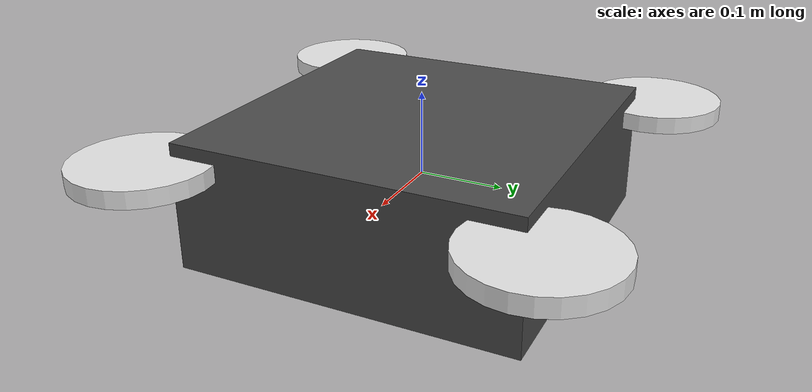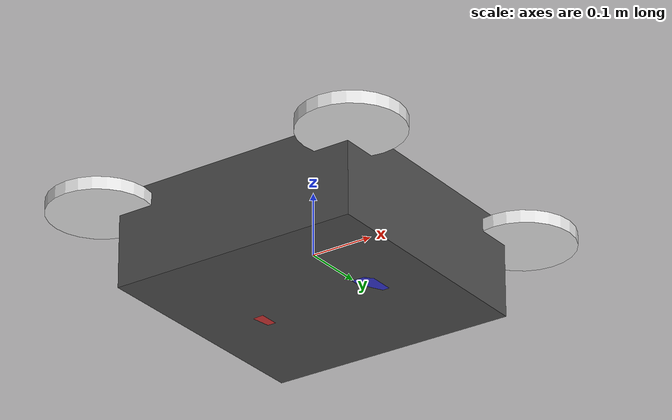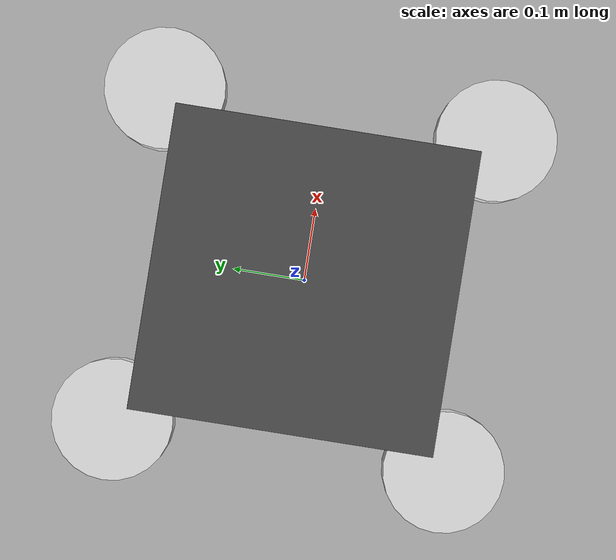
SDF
<?xml version="1.0"?>
<sdf version="1.7">
<model name="firefighting_drone">
    <static>false</static>

    <link name="base_link">
        <pose>0 0 0 0 0 0</pose>
        <collision name="collision">
            <geometry>
                <box>
                    <size>0.4 0.4 0.15</size>
                </box>
            </geometry>
        </collision>

        <visual name="visual">
            <geometry>
                <box>
                    <size>0.4 0.4 0.15</size>
                </box>
            </geometry>
            <material>
                <ambient>0.2 0.2 0.2 1</ambient>
                <diffuse>0.3 0.3 0.3 1</diffuse>
                <specular>0.1 0.1 0.1 1</specular>
            </material>
        </visual>

        <inertial>
            <mass>1.5</mass>
            <pose>0 0 0 0 0 0</pose>
            <inertia>
                <ixx>0.025</ixx>
                <ixy>0</ixy>
                <ixz>0</ixz>
                <iyy>0.025</iyy>
                <iyz>0</iyz>
                <izz>0.04</izz>
            </inertia>
        </inertial>
    </link>

    <!-- Rotor links -->
    <link name="rotor_0">
        <pose>0.22 0.22 0.05 0 0 0</pose>
        <collision name="rotor_collision">
            <geometry>
                <cylinder>
                    <radius>0.08</radius>
                    <length>0.02</length>
                </cylinder>
            </geometry>
        </collision>
        <visual name="rotor_visual">
            <geometry>
                <cylinder>
                    <radius>0.08</radius>
                    <length>0.02</length>
                </cylinder>
            </geometry>
            <material>
                <ambient>0.8 0.8 0.8 1</ambient>
                <diffuse>0.9 0.9 0.9 1</diffuse>
            </material>
        </visual>
        <inertial>
            <mass>0.01</mass>
            <inertia>
                <ixx>0.0001</ixx>
                <ixy>0</ixy>
                <ixz>0</ixz>
                <iyy>0.0001</iyy>
                <iyz>0</iyz>
                <izz>0.0001</izz>
            </inertia>
        </inertial>
    </link>

    <link name="rotor_1">
        <pose>-0.22 0.22 0.05 0 0 0</pose>
        <collision name="rotor_collision">
            <geometry>
                <cylinder>
                    <radius>0.08</radius>
                    <length>0.02</length>
                </cylinder>
            </geometry>
        </collision>
        <visual name="rotor_visual">
            <geometry>
                <cylinder>
                    <radius>0.08</radius>
                    <length>0.02</length>
                </cylinder>
            </geometry>
            <material>
                <ambient>0.8 0.8 0.8 1</ambient>
                <diffuse>0.9 0.9 0.9 1</diffuse>
            </material>
        </visual>
        <inertial>
            <mass>0.01</mass>
            <inertia>
                <ixx>0.0001</ixx>
                <ixy>0</ixy>
                <ixz>0</ixz>
                <iyy>0.0001</iyy>
                <iyz>0</iyz>
                <izz>0.0001</izz>
            </inertia>
        </inertial>
    </link>

    <link name="rotor_2">
        <pose>-0.22 -0.22 0.05 0 0 0</pose>
        <collision name="rotor_collision">
            <geometry>
                <cylinder>
                    <radius>0.08</radius>
                    <length>0.02</length>
                </cylinder>
            </geometry>
        </collision>
        <visual name="rotor_visual">
            <geometry>
                <cylinder>
                    <radius>0.08</radius>
                    <length>0.02</length>
                </cylinder>
            </geometry>
            <material>
                <ambient>0.8 0.8 0.8 1</ambient>
                <diffuse>0.9 0.9 0.9 1</diffuse>
            </material>
        </visual>
        <inertial>
            <mass>0.01</mass>
            <inertia>
                <ixx>0.0001</ixx>
                <ixy>0</ixy>
                <ixz>0</ixz>
                <iyy>0.0001</iyy>
                <iyz>0</iyz>
                <izz>0.0001</izz>
            </inertia>
        </inertial>
    </link>

    <link name="rotor_3">
        <pose>0.22 -0.22 0.05 0 0 0</pose>
        <collision name="rotor_collision">
            <geometry>
                <cylinder>
                    <radius>0.08</radius>
                    <length>0.02</length>
                </cylinder>
            </geometry>
        </collision>
        <visual name="rotor_visual">
            <geometry>
                <cylinder>
                    <radius>0.08</radius>
                    <length>0.02</length>
                </cylinder>
            </geometry>
            <material>
                <ambient>0.8 0.8 0.8 1</ambient>
                <diffuse>0.9 0.9 0.9 1</diffuse>
            </material>
        </visual>
        <inertial>
            <mass>0.01</mass>
            <inertia>
                <ixx>0.0001</ixx>
                <ixy>0</ixy>
                <ixz>0</ixz>
                <iyy>0.0001</iyy>
                <iyz>0</iyz>
                <izz>0.0001</izz>
            </inertia>
        </inertial>
    </link>

    <!-- RGB Camera Link (downward facing) -->
    <link name="rgb_camera_link">
        <pose>0.1 0 -0.05 0 1.5708 0</pose>
        <collision name="rgb_camera_collision">
            <geometry>
                <box>
                    <size>0.05 0.05 0.03</size>
                </box>
            </geometry>
        </collision>
        <visual name="rgb_camera_visual">
            <geometry>
                <box>
                    <size>0.05 0.05 0.03</size>
                </box>
            </geometry>
            <material>
                <ambient>0.2 0.2 0.8 1</ambient>
                <diffuse>0.2 0.2 0.8 1</diffuse>
                <specular>0.1 0.1 0.1 1</specular>
            </material>
        </visual>
        <inertial>
            <mass>0.05</mass>
            <inertia>
                <ixx>0.00001</ixx>
                <ixy>0</ixy>
                <ixz>0</ixz>
                <iyy>0.00001</iyy>
                <iyz>0</iyz>
                <izz>0.00001</izz>
            </inertia>
        </inertial>

        <!-- RGB Camera Sensor -->
        <sensor name="rgb_camera" type="camera">
            <camera>
                <horizontal_fov>1.047</horizontal_fov>
                <image>
                    <width>640</width>
                    <height>480</height>
                    <format>R8G8B8</format>
                </image>
                <clip>
                    <near>0.1</near>
                    <far>100</far>
                </clip>
                <noise>
                    <type>gaussian</type>
                    <mean>0</mean>
                    <stddev>0.007</stddev>
                </noise>
            </camera>
            <always_on>1</always_on>
            <update_rate>30</update_rate>
            <visualize>true</visualize>
            <topic>model/firefighting_drone/rgb_camera/image</topic>
        </sensor>
    </link>

    <!-- IR/Thermal Camera Link (downward facing) -->
    <link name="thermal_camera_link">
        <pose>-0.1 0 -0.05 0 1.5708 0</pose>
        <collision name="thermal_camera_collision">
            <geometry>
                <box>
                    <size>0.05 0.05 0.03</size>
                </box>
            </geometry>
        </collision>
        <visual name="thermal_camera_visual">
            <geometry>
                <box>
                    <size>0.05 0.05 0.03</size>
                </box>
            </geometry>
            <material>
                <ambient>0.8 0.2 0.2 1</ambient>
                <diffuse>0.8 0.2 0.2 1</diffuse>
                <specular>0.1 0.1 0.1 1</specular>
            </material>
        </visual>
        <inertial>
            <mass>0.05</mass>
            <inertia>
                <ixx>0.00001</ixx>
                <ixy>0</ixy>
                <ixz>0</ixz>
                <iyy>0.00001</iyy>
                <iyz>0</iyz>
                <izz>0.00001</izz>
            </inertia>
        </inertial>

        <!-- Thermal Camera Sensor (using regular camera with post-processing for thermal effect) -->
        <sensor name="thermal_camera" type="camera">
            <camera>
                <horizontal_fov>1.047</horizontal_fov>
                <image>
                    <width>320</width>
                    <height>240</height>
                    <format>L8</format>
                </image>
                <clip>
                    <near>0.1</near>
                    <far>100</far>
                </clip>
                <noise>
                    <type>gaussian</type>
                    <mean>0</mean>
                    <stddev>0.005</stddev>
                </noise>
            </camera>
            <always_on>1</always_on>
            <update_rate>10</update_rate>
            <visualize>true</visualize>
            <topic>model/firefighting_drone/thermal_camera/image</topic>
        </sensor>
    </link>

    <!-- Joints to connect rotors to base -->
    <joint name="rotor_0_joint" type="revolute">
        <parent>base_link</parent>
        <child>rotor_0</child>
        <axis>
            <xyz>0 0 1</xyz>
        </axis>
    </joint>

    <joint name="rotor_1_joint" type="revolute">
        <parent>base_link</parent>
        <child>rotor_1</child>
        <axis>
            <xyz>0 0 1</xyz>
        </axis>
    </joint>

    <joint name="rotor_2_joint" type="revolute">
        <parent>base_link</parent>
        <child>rotor_2</child>
        <axis>
            <xyz>0 0 1</xyz>
        </axis>
    </joint>

    <joint name="rotor_3_joint" type="revolute">
        <parent>base_link</parent>
        <child>rotor_3</child>
        <axis>
            <xyz>0 0 1</xyz>
        </axis>
    </joint>

    <!-- Camera joints -->
    <joint name="rgb_camera_joint" type="fixed">
        <parent>base_link</parent>
        <child>rgb_camera_link</child>
    </joint>

    <joint name="thermal_camera_joint" type="fixed">
        <parent>base_link</parent>
        <child>thermal_camera_link</child>
    </joint>

    <!-- Velocity control plugin (simpler approach) -->
    <plugin filename="libignition-gazebo-velocity-control-system.so" name="ignition::gazebo::systems::VelocityControl">
        <topic>model/firefighting_drone/cmd_vel</topic>
    </plugin>

    <!-- Joint position controller for rotors -->
    <plugin filename="libignition-gazebo-joint-position-controller-system.so" name="ignition::gazebo::systems::JointPositionController">
        <joint_name>rotor_0_joint</joint_name>
        <topic>model/firefighting_drone/joint/rotor_0_joint/cmd_vel</topic>
    </plugin>

    <plugin filename="libignition-gazebo-joint-position-controller-system.so" name="ignition::gazebo::systems::JointPositionController">
        <joint_name>rotor_1_joint</joint_name>
        <topic>model/firefighting_drone/joint/rotor_1_joint/cmd_vel</topic>
    </plugin>

    <plugin filename="libignition-gazebo-joint-position-controller-system.so" name="ignition::gazebo::systems::JointPositionController">
        <joint_name>rotor_2_joint</joint_name>
        <topic>model/firefighting_drone/joint/rotor_2_joint/cmd_vel</topic>
    </plugin>

    <plugin filename="libignition-gazebo-joint-position-controller-system.so" name="ignition::gazebo::systems::JointPositionController">
        <joint_name>rotor_3_joint</joint_name>
        <topic>model/firefighting_drone/joint/rotor_3_joint/cmd_vel</topic>
    </plugin>

    <!-- Odometry publisher -->
    <plugin filename="libignition-gazebo-odometry-publisher-system.so" name="ignition::gazebo::systems::OdometryPublisher">
        <odom_frame>firefighting_drone/odom</odom_frame>
        <robot_base_frame>firefighting_drone</robot_base_frame>
        <odom_topic>model/firefighting_drone/odometry</odom_topic>
        <odom_publish_frequency>50</odom_publish_frequency>
    </plugin>

    <!-- IMU sensor -->
    <plugin filename="libignition-gazebo-imu-system.so" name="ignition::gazebo::systems::Imu">
        <link_name>base_link</link_name>
        <topic>model/firefighting_drone/imu</topic>
        <initial_orientation_as_reference>false</initial_orientation_as_reference>
    </plugin>

    <!-- Pose publisher -->
    <plugin filename="libignition-gazebo-pose-publisher-system.so" name="ignition::gazebo::systems::PosePublisher">
        <publish_link_pose>true</publish_link_pose>
        <publish_collision_pose>false</publish_collision_pose>
        <publish_visual_pose>false</publish_visual_pose>
        <use_pose_vector_msg>true</use_pose_vector_msg>
        <static_publisher>true</static_publisher>
        <static_update_frequency>1</static_update_frequency>
    </plugin>

</model>
</sdf>
